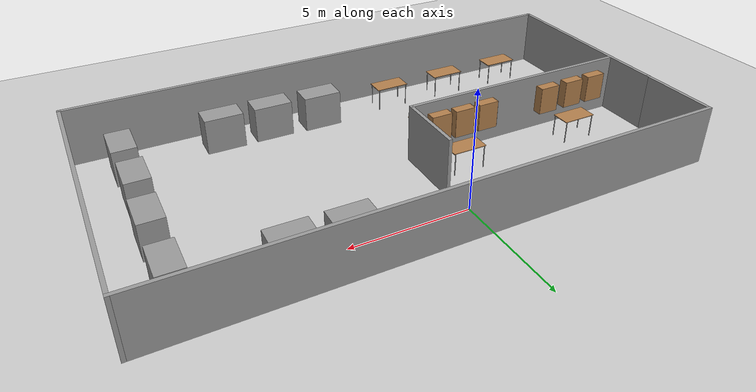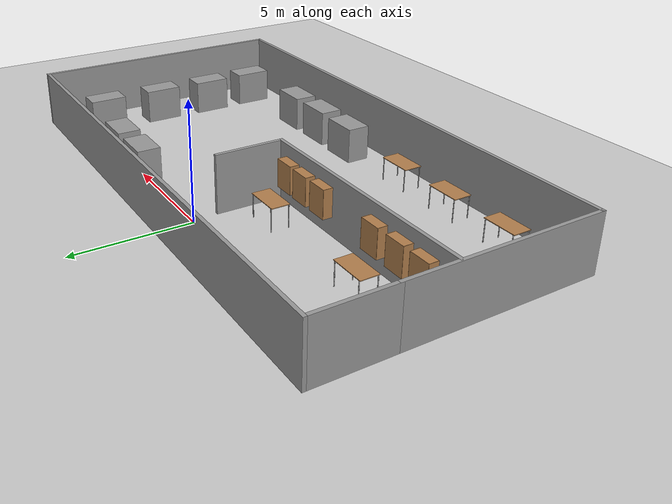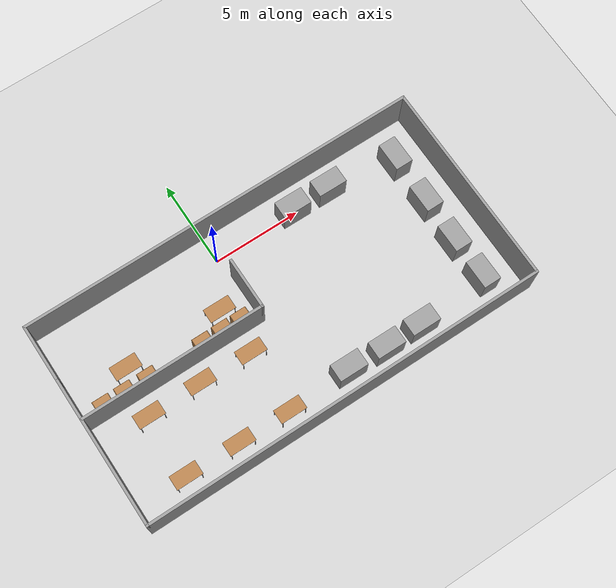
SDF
<sdf version="1.7">
 <world name="default">
  <light name="sun" type="directional">
   <pose>0 0 10 0 -0 0</pose>
   <diffuse>0.8 0.8 0.8 1</diffuse>
   <specular>0.2 0.2 0.2 1</specular>
   <attenuation>
    <range>1000</range>
    <constant>0.9</constant>
    <linear>0.01</linear>
    <quadratic>0.001</quadratic>
   </attenuation>
   <direction>-0.5 0.1 -0.9</direction>
   <spot><inner_angle>0</inner_angle><outer_angle>0</outer_angle><falloff>0</falloff></spot>
  </light>
  <model name="ground_plane">
   <static>1</static>
   <link name="link">
    <collision name="collision">
     <geometry><plane><normal>0 0 1</normal><size>100 100</size></plane></geometry>
     <surface>
      <contact><collide_bitmask>65535</collide_bitmask></contact>
      <friction><ode><mu>100</mu><mu2>50</mu2></ode></friction>
     </surface>
    </collision>
    <visual name="visual">
     <cast_shadows>0</cast_shadows>
     <geometry><plane><normal>0 0 1</normal><size>100 100</size></plane></geometry>
     <material>
      <script><uri>file://media/materials/scripts/gazebo.material</uri><name>Gazebo/Grey</name></script>
     </material>
    </visual>
   </link>
  </model>
  <gravity>0 0 -9.8</gravity>
  <magnetic_field>6e-06 2.3e-05 -4.2e-05</magnetic_field>
  <atmosphere type="adiabatic"/>
  <physics type="ode">
   <max_step_size>0.001</max_step_size>
   <real_time_factor>1</real_time_factor>
   <real_time_update_rate>1000</real_time_update_rate>
  </physics>
  <scene><ambient>0.4 0.4 0.4 1</ambient><background>0.7 0.7 0.7 1</background><shadows>1</shadows></scene>
  <spherical_coordinates>
   <surface_model>EARTH_WGS84</surface_model>
   <latitude_deg>0</latitude_deg>
   <longitude_deg>0</longitude_deg>
   <elevation>0</elevation>
   <heading_deg>0</heading_deg>
  </spherical_coordinates>
  <model name="walls_manufacturing">
   <pose>1.2818 -4.28087 0 0 -0 0</pose>
   <link name="Wall_0">
    <collision name="Wall_0_Collision">
     <geometry><box><size>8.5 0.15 2.5</size></box></geometry>
     <pose>0 0 1.25 0 -0 0</pose>
    </collision>
    <visual name="Wall_0_Visual">
     <pose>0 0 1.25 0 -0 0</pose>
     <geometry><box><size>8.5 0.15 2.5</size></box></geometry>
     <material>
      <script><uri>file://media/materials/scripts/gazebo.material</uri><name>Gazebo/Grey</name></script>
      <ambient>1 1 1 1</ambient>
     </material>
     <meta><layer>0</layer></meta>
    </visual>
    <pose>-11.425 -1.625 0 0 -0 -1.5708</pose>
   </link>
   <link name="Wall_1">
    <collision name="Wall_1_Collision">
     <geometry><box><size>23 0.15 2.5</size></box></geometry>
     <pose>0 0 1.25 0 -0 0</pose>
    </collision>
    <visual name="Wall_1_Visual">
     <pose>0 0 1.25 0 -0 0</pose>
     <geometry><box><size>23 0.15 2.5</size></box></geometry>
     <material>
      <script><uri>file://media/materials/scripts/gazebo.material</uri><name>Gazebo/Grey</name></script>
      <ambient>1 1 1 1</ambient>
     </material>
     <meta><layer>0</layer></meta>
    </visual>
    <pose>-0 -5.8 0 0 -0 0</pose>
   </link>
   <link name="Wall_2">
    <collision name="Wall_2_Collision">
     <geometry><box><size>11.75 0.15 2.5</size></box></geometry>
     <pose>0 0 1.25 0 -0 0</pose>
    </collision>
    <visual name="Wall_2_Visual">
     <pose>0 0 1.25 0 -0 0</pose>
     <geometry><box><size>11.75 0.15 2.5</size></box></geometry>
     <material>
      <script><uri>file://media/materials/scripts/gazebo.material</uri><name>Gazebo/Grey</name></script>
      <ambient>1 1 1 1</ambient>
     </material>
     <meta><layer>0</layer></meta>
    </visual>
    <pose>11.425 0 0 0 -0 1.5708</pose>
   </link>
   <link name="Wall_3">
    <collision name="Wall_3_Collision">
     <geometry><box><size>23 0.15 2.5</size></box></geometry>
     <pose>0 0 1.25 0 -0 0</pose>
    </collision>
    <visual name="Wall_3_Visual">
     <pose>0 0 1.25 0 -0 0</pose>
     <geometry><box><size>23 0.15 2.5</size></box></geometry>
     <material>
      <script><uri>file://media/materials/scripts/gazebo.material</uri><name>Gazebo/Grey</name></script>
      <ambient>1 1 1 1</ambient>
     </material>
     <meta><layer>0</layer></meta>
    </visual>
    <pose>-0 5.8 0 0 -0 3.14159</pose>
   </link>
   <link name="Wall_4">
    <collision name="Wall_4_Collision">
     <geometry><box><size>3.4 0.15 2.5</size></box></geometry>
     <pose>0 0 1.25 0 -0 0</pose>
    </collision>
    <visual name="Wall_4_Visual">
     <pose>0 0 1.25 0 -0 0</pose>
     <geometry><box><size>3.4 0.15 2.5</size></box></geometry>
     <material>
      <script><uri>file://media/materials/scripts/gazebo.material</uri><name>Gazebo/Grey</name></script>
      <ambient>1 1 1 1</ambient>
     </material>
     <meta><layer>0</layer></meta>
    </visual>
    <pose>-11.425 4.175 0 0 -0 -1.5708</pose>
   </link>
   <link name="Wall_6">
    <collision name="Wall_6_Collision">
     <geometry><box><size>10.5 0.15 2.5</size></box></geometry>
     <pose>0 0 1.25 0 -0 0</pose>
    </collision>
    <visual name="Wall_6_Visual">
     <pose>0 0 1.25 0 -0 0</pose>
     <geometry><box><size>10.5 0.15 2.5</size></box></geometry>
     <material>
      <script><uri>file://media/materials/scripts/gazebo.material</uri><name>Gazebo/Grey</name></script>
      <ambient>1 1 1 1</ambient>
     </material>
     <meta><layer>0</layer></meta>
    </visual>
    <pose>-6.20713 0.2621 0 0 -0 0</pose>
   </link>
   <link name="Wall_7">
    <collision name="Wall_7_Collision">
     <geometry><box><size>3 0.15 2.5</size></box></geometry>
     <pose>0 0 1.25 0 -0 0</pose>
    </collision>
    <visual name="Wall_7_Visual">
     <pose>0 0 1.25 0 -0 0</pose>
     <geometry><box><size>3 0.15 2.5</size></box></geometry>
     <material>
      <script><uri>file://media/materials/scripts/gazebo.material</uri><name>Gazebo/Grey</name></script>
      <ambient>1 1 1 1</ambient>
     </material>
     <meta><layer>0</layer></meta>
    </visual>
    <pose>-1.03213 1.6871 0 0 -0 1.5708</pose>
   </link>
   <static>1</static>
  </model>
  <model name="table">
   <static>1</static>
   <link name="link">
    <collision name="surface">
     <pose>0 0 1 0 -0 0</pose>
     <geometry><box><size>1.5 0.8 0.03</size></box></geometry>
     <surface><friction><ode><mu>0.6</mu><mu2>0.6</mu2></ode></friction></surface>
    </collision>
    <visual name="visual1">
     <pose>0 0 1 0 -0 0</pose>
     <geometry><box><size>1.5 0.8 0.03</size></box></geometry>
     <material>
      <script><uri>file://media/materials/scripts/gazebo.material</uri><name>Gazebo/Wood</name></script>
     </material>
    </visual>
    <collision name="front_left_leg">
     <pose>0.68 0.38 0.5 0 -0 0</pose>
     <geometry><cylinder><radius>0.02</radius><length>1</length></cylinder></geometry>
    </collision>
    <visual name="front_left_leg">
     <pose>0.68 0.38 0.5 0 -0 0</pose>
     <geometry><cylinder><radius>0.02</radius><length>1</length></cylinder></geometry>
     <material>
      <script><uri>file://media/materials/scripts/gazebo.material</uri><name>Gazebo/Grey</name></script>
     </material>
    </visual>
    <collision name="front_right_leg">
     <pose>0.68 -0.38 0.5 0 -0 0</pose>
     <geometry><cylinder><radius>0.02</radius><length>1</length></cylinder></geometry>
    </collision>
    <visual name="front_right_leg">
     <pose>0.68 -0.38 0.5 0 -0 0</pose>
     <geometry><cylinder><radius>0.02</radius><length>1</length></cylinder></geometry>
     <material>
      <script><uri>file://media/materials/scripts/gazebo.material</uri><name>Gazebo/Grey</name></script>
     </material>
    </visual>
    <collision name="back_right_leg">
     <pose>-0.68 -0.38 0.5 0 -0 0</pose>
     <geometry><cylinder><radius>0.02</radius><length>1</length></cylinder></geometry>
    </collision>
    <visual name="back_right_leg">
     <pose>-0.68 -0.38 0.5 0 -0 0</pose>
     <geometry><cylinder><radius>0.02</radius><length>1</length></cylinder></geometry>
     <material>
      <script><uri>file://media/materials/scripts/gazebo.material</uri><name>Gazebo/Grey</name></script>
     </material>
    </visual>
    <collision name="back_left_leg">
     <pose>-0.68 0.38 0.5 0 -0 0</pose>
     <geometry><cylinder><radius>0.02</radius><length>1</length></cylinder></geometry>
    </collision>
    <visual name="back_left_leg">
     <pose>-0.68 0.38 0.5 0 -0 0</pose>
     <geometry><cylinder><radius>0.02</radius><length>1</length></cylinder></geometry>
     <material>
      <script><uri>file://media/materials/scripts/gazebo.material</uri><name>Gazebo/Grey</name></script>
     </material>
    </visual>
   </link>
   <pose>-7.27945 -5.25836 0 0 -0 0</pose>
  </model>
  <model name="table_0">
   <static>1</static>
   <link name="link">
    <collision name="surface">
     <pose>0 0 1 0 -0 0</pose>
     <geometry><box><size>1.5 0.8 0.03</size></box></geometry>
     <surface><friction><ode><mu>0.6</mu><mu2>0.6</mu2></ode></friction></surface>
    </collision>
    <visual name="visual1">
     <pose>0 0 1 0 -0 0</pose>
     <geometry><box><size>1.5 0.8 0.03</size></box></geometry>
     <material>
      <script><uri>file://media/materials/scripts/gazebo.material</uri><name>Gazebo/Wood</name></script>
     </material>
    </visual>
    <collision name="front_left_leg">
     <pose>0.68 0.38 0.5 0 -0 0</pose>
     <geometry><cylinder><radius>0.02</radius><length>1</length></cylinder></geometry>
    </collision>
    <visual name="front_left_leg">
     <pose>0.68 0.38 0.5 0 -0 0</pose>
     <geometry><cylinder><radius>0.02</radius><length>1</length></cylinder></geometry>
     <material>
      <script><uri>file://media/materials/scripts/gazebo.material</uri><name>Gazebo/Grey</name></script>
     </material>
    </visual>
    <collision name="front_right_leg">
     <pose>0.68 -0.38 0.5 0 -0 0</pose>
     <geometry><cylinder><radius>0.02</radius><length>1</length></cylinder></geometry>
    </collision>
    <visual name="front_right_leg">
     <pose>0.68 -0.38 0.5 0 -0 0</pose>
     <geometry><cylinder><radius>0.02</radius><length>1</length></cylinder></geometry>
     <material>
      <script><uri>file://media/materials/scripts/gazebo.material</uri><name>Gazebo/Grey</name></script>
     </material>
    </visual>
    <collision name="back_right_leg">
     <pose>-0.68 -0.38 0.5 0 -0 0</pose>
     <geometry><cylinder><radius>0.02</radius><length>1</length></cylinder></geometry>
    </collision>
    <visual name="back_right_leg">
     <pose>-0.68 -0.38 0.5 0 -0 0</pose>
     <geometry><cylinder><radius>0.02</radius><length>1</length></cylinder></geometry>
     <material>
      <script><uri>file://media/materials/scripts/gazebo.material</uri><name>Gazebo/Grey</name></script>
     </material>
    </visual>
    <collision name="back_left_leg">
     <pose>-0.68 0.38 0.5 0 -0 0</pose>
     <geometry><cylinder><radius>0.02</radius><length>1</length></cylinder></geometry>
    </collision>
    <visual name="back_left_leg">
     <pose>-0.68 0.38 0.5 0 -0 0</pose>
     <geometry><cylinder><radius>0.02</radius><length>1</length></cylinder></geometry>
     <material>
      <script><uri>file://media/materials/scripts/gazebo.material</uri><name>Gazebo/Grey</name></script>
     </material>
    </visual>
   </link>
   <pose>-4.26634 -5.23085 0 0 -0 0</pose>
  </model>
  <model name="table_1">
   <static>1</static>
   <link name="link">
    <collision name="surface">
     <pose>0 0 1 0 -0 0</pose>
     <geometry><box><size>1.5 0.8 0.03</size></box></geometry>
     <surface><friction><ode><mu>0.6</mu><mu2>0.6</mu2></ode></friction></surface>
    </collision>
    <visual name="visual1">
     <pose>0 0 1 0 -0 0</pose>
     <geometry><box><size>1.5 0.8 0.03</size></box></geometry>
     <material>
      <script><uri>file://media/materials/scripts/gazebo.material</uri><name>Gazebo/Wood</name></script>
     </material>
    </visual>
    <collision name="front_left_leg">
     <pose>0.68 0.38 0.5 0 -0 0</pose>
     <geometry><cylinder><radius>0.02</radius><length>1</length></cylinder></geometry>
    </collision>
    <visual name="front_left_leg">
     <pose>0.68 0.38 0.5 0 -0 0</pose>
     <geometry><cylinder><radius>0.02</radius><length>1</length></cylinder></geometry>
     <material>
      <script><uri>file://media/materials/scripts/gazebo.material</uri><name>Gazebo/Grey</name></script>
     </material>
    </visual>
    <collision name="front_right_leg">
     <pose>0.68 -0.38 0.5 0 -0 0</pose>
     <geometry><cylinder><radius>0.02</radius><length>1</length></cylinder></geometry>
    </collision>
    <visual name="front_right_leg">
     <pose>0.68 -0.38 0.5 0 -0 0</pose>
     <geometry><cylinder><radius>0.02</radius><length>1</length></cylinder></geometry>
     <material>
      <script><uri>file://media/materials/scripts/gazebo.material</uri><name>Gazebo/Grey</name></script>
     </material>
    </visual>
    <collision name="back_right_leg">
     <pose>-0.68 -0.38 0.5 0 -0 0</pose>
     <geometry><cylinder><radius>0.02</radius><length>1</length></cylinder></geometry>
    </collision>
    <visual name="back_right_leg">
     <pose>-0.68 -0.38 0.5 0 -0 0</pose>
     <geometry><cylinder><radius>0.02</radius><length>1</length></cylinder></geometry>
     <material>
      <script><uri>file://media/materials/scripts/gazebo.material</uri><name>Gazebo/Grey</name></script>
     </material>
    </visual>
    <collision name="back_left_leg">
     <pose>-0.68 0.38 0.5 0 -0 0</pose>
     <geometry><cylinder><radius>0.02</radius><length>1</length></cylinder></geometry>
    </collision>
    <visual name="back_left_leg">
     <pose>-0.68 0.38 0.5 0 -0 0</pose>
     <geometry><cylinder><radius>0.02</radius><length>1</length></cylinder></geometry>
     <material>
      <script><uri>file://media/materials/scripts/gazebo.material</uri><name>Gazebo/Grey</name></script>
     </material>
    </visual>
   </link>
   <pose>-1.29612 -5.28622 0 0 -0 0</pose>
  </model>
  <model name="unit_box_clone">
   <pose>10.7908 -5.97906 0.771657 0 -6e-06 -0.00013</pose>
   <link name="link">
    <inertial>
     <mass>1</mass>
     <inertia>
      <ixx>0.166667</ixx>
      <ixy>0</ixy>
      <ixz>0</ixz>
      <iyy>0.166667</iyy>
      <iyz>0</iyz>
      <izz>0.166667</izz>
     </inertia>
    </inertial>
    <collision name="collision"><geometry><box><size>1 1.64432 1.54332</size></box></geometry></collision>
    <visual name="visual">
     <geometry><box><size>1 1.64432 1.54332</size></box></geometry>
     <material>
      <script><name>Gazebo/Grey</name><uri>file://media/materials/scripts/gazebo.material</uri></script>
     </material>
    </visual>
   </link>
  </model>
  <model name="unit_box_clone_0">
   <pose>10.8391 -8.36904 0.77166 -0 -0 -8.5e-05</pose>
   <link name="link">
    <inertial>
     <mass>1</mass>
     <inertia>
      <ixx>0.166667</ixx>
      <ixy>0</ixy>
      <ixz>0</ixz>
      <iyy>0.166667</iyy>
      <iyz>0</iyz>
      <izz>0.166667</izz>
     </inertia>
    </inertial>
    <collision name="collision"><geometry><box><size>1 1.64432 1.54332</size></box></geometry></collision>
    <visual name="visual">
     <geometry><box><size>1 1.64432 1.54332</size></box></geometry>
     <material>
      <script><name>Gazebo/Grey</name><uri>file://media/materials/scripts/gazebo.material</uri></script>
     </material>
    </visual>
   </link>
  </model>
  <model name="unit_box_clone_1">
   <pose>10.8615 -0.568479 0.77166 -0 -0 -6.1e-05</pose>
   <link name="link">
    <inertial>
     <mass>1</mass>
     <inertia>
      <ixx>0.166667</ixx>
      <ixy>0</ixy>
      <ixz>0</ixz>
      <iyy>0.166667</iyy>
      <iyz>0</iyz>
      <izz>0.166667</izz>
     </inertia>
    </inertial>
    <collision name="collision"><geometry><box><size>1 1.64432 1.54332</size></box></geometry></collision>
    <visual name="visual">
     <geometry><box><size>1 1.64432 1.54332</size></box></geometry>
     <material>
      <script><name>Gazebo/Grey</name><uri>file://media/materials/scripts/gazebo.material</uri></script>
     </material>
    </visual>
   </link>
  </model>
  <model name="table_clone">
   <static>1</static>
   <link name="link">
    <collision name="surface">
     <pose>0 0 1 0 -0 0</pose>
     <geometry><box><size>1.5 0.8 0.03</size></box></geometry>
     <surface><friction><ode><mu>0.6</mu><mu2>0.6</mu2></ode></friction></surface>
    </collision>
    <visual name="visual1">
     <pose>0 0 1 0 -0 0</pose>
     <geometry><box><size>1.5 0.8 0.03</size></box></geometry>
     <material>
      <script><uri>file://media/materials/scripts/gazebo.material</uri><name>Gazebo/Wood</name></script>
     </material>
    </visual>
    <collision name="front_left_leg">
     <pose>0.68 0.38 0.5 0 -0 0</pose>
     <geometry><cylinder><radius>0.02</radius><length>1</length></cylinder></geometry>
    </collision>
    <visual name="front_left_leg">
     <pose>0.68 0.38 0.5 0 -0 0</pose>
     <geometry><cylinder><radius>0.02</radius><length>1</length></cylinder></geometry>
     <material>
      <script><uri>file://media/materials/scripts/gazebo.material</uri><name>Gazebo/Grey</name></script>
     </material>
    </visual>
    <collision name="front_right_leg">
     <pose>0.68 -0.38 0.5 0 -0 0</pose>
     <geometry><cylinder><radius>0.02</radius><length>1</length></cylinder></geometry>
    </collision>
    <visual name="front_right_leg">
     <pose>0.68 -0.38 0.5 0 -0 0</pose>
     <geometry><cylinder><radius>0.02</radius><length>1</length></cylinder></geometry>
     <material>
      <script><uri>file://media/materials/scripts/gazebo.material</uri><name>Gazebo/Grey</name></script>
     </material>
    </visual>
    <collision name="back_right_leg">
     <pose>-0.68 -0.38 0.5 0 -0 0</pose>
     <geometry><cylinder><radius>0.02</radius><length>1</length></cylinder></geometry>
    </collision>
    <visual name="back_right_leg">
     <pose>-0.68 -0.38 0.5 0 -0 0</pose>
     <geometry><cylinder><radius>0.02</radius><length>1</length></cylinder></geometry>
     <material>
      <script><uri>file://media/materials/scripts/gazebo.material</uri><name>Gazebo/Grey</name></script>
     </material>
    </visual>
    <collision name="back_left_leg">
     <pose>-0.68 0.38 0.5 0 -0 0</pose>
     <geometry><cylinder><radius>0.02</radius><length>1</length></cylinder></geometry>
    </collision>
    <visual name="back_left_leg">
     <pose>-0.68 0.38 0.5 0 -0 0</pose>
     <geometry><cylinder><radius>0.02</radius><length>1</length></cylinder></geometry>
     <material>
      <script><uri>file://media/materials/scripts/gazebo.material</uri><name>Gazebo/Grey</name></script>
     </material>
    </visual>
   </link>
   <pose>-7.33676 -8.81284 0 0 -0 0</pose>
  </model>
  <model name="table_clone_0">
   <static>1</static>
   <link name="link">
    <collision name="surface">
     <pose>0 0 1 0 -0 0</pose>
     <geometry><box><size>1.5 0.8 0.03</size></box></geometry>
     <surface><friction><ode><mu>0.6</mu><mu2>0.6</mu2></ode></friction></surface>
    </collision>
    <visual name="visual1">
     <pose>0 0 1 0 -0 0</pose>
     <geometry><box><size>1.5 0.8 0.03</size></box></geometry>
     <material>
      <script><uri>file://media/materials/scripts/gazebo.material</uri><name>Gazebo/Wood</name></script>
     </material>
    </visual>
    <collision name="front_left_leg">
     <pose>0.68 0.38 0.5 0 -0 0</pose>
     <geometry><cylinder><radius>0.02</radius><length>1</length></cylinder></geometry>
    </collision>
    <visual name="front_left_leg">
     <pose>0.68 0.38 0.5 0 -0 0</pose>
     <geometry><cylinder><radius>0.02</radius><length>1</length></cylinder></geometry>
     <material>
      <script><uri>file://media/materials/scripts/gazebo.material</uri><name>Gazebo/Grey</name></script>
     </material>
    </visual>
    <collision name="front_right_leg">
     <pose>0.68 -0.38 0.5 0 -0 0</pose>
     <geometry><cylinder><radius>0.02</radius><length>1</length></cylinder></geometry>
    </collision>
    <visual name="front_right_leg">
     <pose>0.68 -0.38 0.5 0 -0 0</pose>
     <geometry><cylinder><radius>0.02</radius><length>1</length></cylinder></geometry>
     <material>
      <script><uri>file://media/materials/scripts/gazebo.material</uri><name>Gazebo/Grey</name></script>
     </material>
    </visual>
    <collision name="back_right_leg">
     <pose>-0.68 -0.38 0.5 0 -0 0</pose>
     <geometry><cylinder><radius>0.02</radius><length>1</length></cylinder></geometry>
    </collision>
    <visual name="back_right_leg">
     <pose>-0.68 -0.38 0.5 0 -0 0</pose>
     <geometry><cylinder><radius>0.02</radius><length>1</length></cylinder></geometry>
     <material>
      <script><uri>file://media/materials/scripts/gazebo.material</uri><name>Gazebo/Grey</name></script>
     </material>
    </visual>
    <collision name="back_left_leg">
     <pose>-0.68 0.38 0.5 0 -0 0</pose>
     <geometry><cylinder><radius>0.02</radius><length>1</length></cylinder></geometry>
    </collision>
    <visual name="back_left_leg">
     <pose>-0.68 0.38 0.5 0 -0 0</pose>
     <geometry><cylinder><radius>0.02</radius><length>1</length></cylinder></geometry>
     <material>
      <script><uri>file://media/materials/scripts/gazebo.material</uri><name>Gazebo/Grey</name></script>
     </material>
    </visual>
   </link>
   <pose>-4.27772 -8.84752 0 0 -0 0</pose>
  </model>
  <model name="table_clone_1">
   <static>1</static>
   <link name="link">
    <collision name="surface">
     <pose>0 0 1 0 -0 0</pose>
     <geometry><box><size>1.5 0.8 0.03</size></box></geometry>
     <surface><friction><ode><mu>0.6</mu><mu2>0.6</mu2></ode></friction></surface>
    </collision>
    <visual name="visual1">
     <pose>0 0 1 0 -0 0</pose>
     <geometry><box><size>1.5 0.8 0.03</size></box></geometry>
     <material>
      <script><uri>file://media/materials/scripts/gazebo.material</uri><name>Gazebo/Wood</name></script>
     </material>
    </visual>
    <collision name="front_left_leg">
     <pose>0.68 0.38 0.5 0 -0 0</pose>
     <geometry><cylinder><radius>0.02</radius><length>1</length></cylinder></geometry>
    </collision>
    <visual name="front_left_leg">
     <pose>0.68 0.38 0.5 0 -0 0</pose>
     <geometry><cylinder><radius>0.02</radius><length>1</length></cylinder></geometry>
     <material>
      <script><uri>file://media/materials/scripts/gazebo.material</uri><name>Gazebo/Grey</name></script>
     </material>
    </visual>
    <collision name="front_right_leg">
     <pose>0.68 -0.38 0.5 0 -0 0</pose>
     <geometry><cylinder><radius>0.02</radius><length>1</length></cylinder></geometry>
    </collision>
    <visual name="front_right_leg">
     <pose>0.68 -0.38 0.5 0 -0 0</pose>
     <geometry><cylinder><radius>0.02</radius><length>1</length></cylinder></geometry>
     <material>
      <script><uri>file://media/materials/scripts/gazebo.material</uri><name>Gazebo/Grey</name></script>
     </material>
    </visual>
    <collision name="back_right_leg">
     <pose>-0.68 -0.38 0.5 0 -0 0</pose>
     <geometry><cylinder><radius>0.02</radius><length>1</length></cylinder></geometry>
    </collision>
    <visual name="back_right_leg">
     <pose>-0.68 -0.38 0.5 0 -0 0</pose>
     <geometry><cylinder><radius>0.02</radius><length>1</length></cylinder></geometry>
     <material>
      <script><uri>file://media/materials/scripts/gazebo.material</uri><name>Gazebo/Grey</name></script>
     </material>
    </visual>
    <collision name="back_left_leg">
     <pose>-0.68 0.38 0.5 0 -0 0</pose>
     <geometry><cylinder><radius>0.02</radius><length>1</length></cylinder></geometry>
    </collision>
    <visual name="back_left_leg">
     <pose>-0.68 0.38 0.5 0 -0 0</pose>
     <geometry><cylinder><radius>0.02</radius><length>1</length></cylinder></geometry>
     <material>
      <script><uri>file://media/materials/scripts/gazebo.material</uri><name>Gazebo/Grey</name></script>
     </material>
    </visual>
   </link>
   <pose>-1.30052 -8.87613 0 0 -0 0</pose>
  </model>
  <model name="bookshelf">
   <static>1</static>
   <link name="link">
    <inertial><mass>1</mass></inertial>
    <collision name="back">
     <pose>0 0.005 0.6 0 -0 0</pose>
     <geometry><box><size>0.9 0.01 1.2</size></box></geometry>
    </collision>
    <visual name="visual1">
     <pose>0 0.005 0.6 0 -0 0</pose>
     <geometry><box><size>0.9 0.01 1.2</size></box></geometry>
     <material>
      <script><uri>file://media/materials/scripts/gazebo.material</uri><name>Gazebo/Wood</name></script>
     </material>
    </visual>
    <collision name="left_side">
     <pose>0.45 -0.195 0.6 0 -0 0</pose>
     <geometry><box><size>0.02 0.4 1.2</size></box></geometry>
    </collision>
    <visual name="visual2">
     <pose>0.45 -0.195 0.6 0 -0 0</pose>
     <geometry><box><size>0.02 0.4 1.2</size></box></geometry>
     <material>
      <script><uri>file://media/materials/scripts/gazebo.material</uri><name>Gazebo/Wood</name></script>
     </material>
    </visual>
    <collision name="right_side">
     <pose>-0.45 -0.195 0.6 0 -0 0</pose>
     <geometry><box><size>0.02 0.4 1.2</size></box></geometry>
    </collision>
    <visual name="visual3">
     <pose>-0.45 -0.195 0.6 0 -0 0</pose>
     <geometry><box><size>0.02 0.4 1.2</size></box></geometry>
     <material>
      <script><uri>file://media/materials/scripts/gazebo.material</uri><name>Gazebo/Wood</name></script>
     </material>
    </visual>
    <collision name="bottom">
     <pose>0 -0.195 0.03 0 -0 0</pose>
     <geometry><box><size>0.88 0.4 0.06</size></box></geometry>
    </collision>
    <visual name="visual4">
     <pose>0 -0.195 0.03 0 -0 0</pose>
     <geometry><box><size>0.88 0.4 0.06</size></box></geometry>
     <material>
      <script><uri>file://media/materials/scripts/gazebo.material</uri><name>Gazebo/Wood</name></script>
     </material>
    </visual>
    <collision name="top">
     <pose>0 -0.195 1.19 0 -0 0</pose>
     <geometry><box><size>0.88 0.4 0.02</size></box></geometry>
    </collision>
    <visual name="visual5">
     <pose>0 -0.195 1.19 0 -0 0</pose>
     <geometry><box><size>0.88 0.4 0.02</size></box></geometry>
     <material>
      <script><uri>file://media/materials/scripts/gazebo.material</uri><name>Gazebo/Wood</name></script>
     </material>
    </visual>
    <collision name="low_shelf">
     <pose>0 -0.195 0.43 0 -0 0</pose>
     <geometry><box><size>0.88 0.4 0.02</size></box></geometry>
    </collision>
    <visual name="visual6">
     <pose>0 -0.195 0.43 0 -0 0</pose>
     <geometry><box><size>0.88 0.4 0.02</size></box></geometry>
     <material>
      <script><uri>file://media/materials/scripts/gazebo.material</uri><name>Gazebo/Wood</name></script>
     </material>
    </visual>
    <collision name="high_shelf">
     <pose>0 -0.195 0.8 0 -0 0</pose>
     <geometry><box><size>0.88 0.4 0.02</size></box></geometry>
    </collision>
    <visual name="visual7">
     <pose>0 -0.195 0.8 0 -0 0</pose>
     <geometry><box><size>0.88 0.4 0.02</size></box></geometry>
     <material>
      <script><uri>file://media/materials/scripts/gazebo.material</uri><name>Gazebo/Wood</name></script>
     </material>
    </visual>
   </link>
   <pose>-0.875461 -3.46341 0.861865 0 -0 0</pose>
  </model>
  <model name="bookshelf_clone">
   <static>1</static>
   <link name="link">
    <inertial><mass>1</mass></inertial>
    <collision name="back">
     <pose>0 0.005 0.6 0 -0 0</pose>
     <geometry><box><size>0.9 0.01 1.2</size></box></geometry>
    </collision>
    <visual name="visual1">
     <pose>0 0.005 0.6 0 -0 0</pose>
     <geometry><box><size>0.9 0.01 1.2</size></box></geometry>
     <material>
      <script><uri>file://media/materials/scripts/gazebo.material</uri><name>Gazebo/Wood</name></script>
     </material>
    </visual>
    <collision name="left_side">
     <pose>0.45 -0.195 0.6 0 -0 0</pose>
     <geometry><box><size>0.02 0.4 1.2</size></box></geometry>
    </collision>
    <visual name="visual2">
     <pose>0.45 -0.195 0.6 0 -0 0</pose>
     <geometry><box><size>0.02 0.4 1.2</size></box></geometry>
     <material>
      <script><uri>file://media/materials/scripts/gazebo.material</uri><name>Gazebo/Wood</name></script>
     </material>
    </visual>
    <collision name="right_side">
     <pose>-0.45 -0.195 0.6 0 -0 0</pose>
     <geometry><box><size>0.02 0.4 1.2</size></box></geometry>
    </collision>
    <visual name="visual3">
     <pose>-0.45 -0.195 0.6 0 -0 0</pose>
     <geometry><box><size>0.02 0.4 1.2</size></box></geometry>
     <material>
      <script><uri>file://media/materials/scripts/gazebo.material</uri><name>Gazebo/Wood</name></script>
     </material>
    </visual>
    <collision name="bottom">
     <pose>0 -0.195 0.03 0 -0 0</pose>
     <geometry><box><size>0.88 0.4 0.06</size></box></geometry>
    </collision>
    <visual name="visual4">
     <pose>0 -0.195 0.03 0 -0 0</pose>
     <geometry><box><size>0.88 0.4 0.06</size></box></geometry>
     <material>
      <script><uri>file://media/materials/scripts/gazebo.material</uri><name>Gazebo/Wood</name></script>
     </material>
    </visual>
    <collision name="top">
     <pose>0 -0.195 1.19 0 -0 0</pose>
     <geometry><box><size>0.88 0.4 0.02</size></box></geometry>
    </collision>
    <visual name="visual5">
     <pose>0 -0.195 1.19 0 -0 0</pose>
     <geometry><box><size>0.88 0.4 0.02</size></box></geometry>
     <material>
      <script><uri>file://media/materials/scripts/gazebo.material</uri><name>Gazebo/Wood</name></script>
     </material>
    </visual>
    <collision name="low_shelf">
     <pose>0 -0.195 0.43 0 -0 0</pose>
     <geometry><box><size>0.88 0.4 0.02</size></box></geometry>
    </collision>
    <visual name="visual6">
     <pose>0 -0.195 0.43 0 -0 0</pose>
     <geometry><box><size>0.88 0.4 0.02</size></box></geometry>
     <material>
      <script><uri>file://media/materials/scripts/gazebo.material</uri><name>Gazebo/Wood</name></script>
     </material>
    </visual>
    <collision name="high_shelf">
     <pose>0 -0.195 0.8 0 -0 0</pose>
     <geometry><box><size>0.88 0.4 0.02</size></box></geometry>
    </collision>
    <visual name="visual7">
     <pose>0 -0.195 0.8 0 -0 0</pose>
     <geometry><box><size>0.88 0.4 0.02</size></box></geometry>
     <material>
      <script><uri>file://media/materials/scripts/gazebo.material</uri><name>Gazebo/Wood</name></script>
     </material>
    </visual>
   </link>
   <pose>-1.97917 -3.45418 0.859303 0 -0 0</pose>
  </model>
  <model name="bookshelf_clone_0">
   <static>1</static>
   <link name="link">
    <inertial><mass>1</mass></inertial>
    <collision name="back">
     <pose>0 0.005 0.6 0 -0 0</pose>
     <geometry><box><size>0.9 0.01 1.2</size></box></geometry>
    </collision>
    <visual name="visual1">
     <pose>0 0.005 0.6 0 -0 0</pose>
     <geometry><box><size>0.9 0.01 1.2</size></box></geometry>
     <material>
      <script><uri>file://media/materials/scripts/gazebo.material</uri><name>Gazebo/Wood</name></script>
     </material>
    </visual>
    <collision name="left_side">
     <pose>0.45 -0.195 0.6 0 -0 0</pose>
     <geometry><box><size>0.02 0.4 1.2</size></box></geometry>
    </collision>
    <visual name="visual2">
     <pose>0.45 -0.195 0.6 0 -0 0</pose>
     <geometry><box><size>0.02 0.4 1.2</size></box></geometry>
     <material>
      <script><uri>file://media/materials/scripts/gazebo.material</uri><name>Gazebo/Wood</name></script>
     </material>
    </visual>
    <collision name="right_side">
     <pose>-0.45 -0.195 0.6 0 -0 0</pose>
     <geometry><box><size>0.02 0.4 1.2</size></box></geometry>
    </collision>
    <visual name="visual3">
     <pose>-0.45 -0.195 0.6 0 -0 0</pose>
     <geometry><box><size>0.02 0.4 1.2</size></box></geometry>
     <material>
      <script><uri>file://media/materials/scripts/gazebo.material</uri><name>Gazebo/Wood</name></script>
     </material>
    </visual>
    <collision name="bottom">
     <pose>0 -0.195 0.03 0 -0 0</pose>
     <geometry><box><size>0.88 0.4 0.06</size></box></geometry>
    </collision>
    <visual name="visual4">
     <pose>0 -0.195 0.03 0 -0 0</pose>
     <geometry><box><size>0.88 0.4 0.06</size></box></geometry>
     <material>
      <script><uri>file://media/materials/scripts/gazebo.material</uri><name>Gazebo/Wood</name></script>
     </material>
    </visual>
    <collision name="top">
     <pose>0 -0.195 1.19 0 -0 0</pose>
     <geometry><box><size>0.88 0.4 0.02</size></box></geometry>
    </collision>
    <visual name="visual5">
     <pose>0 -0.195 1.19 0 -0 0</pose>
     <geometry><box><size>0.88 0.4 0.02</size></box></geometry>
     <material>
      <script><uri>file://media/materials/scripts/gazebo.material</uri><name>Gazebo/Wood</name></script>
     </material>
    </visual>
    <collision name="low_shelf">
     <pose>0 -0.195 0.43 0 -0 0</pose>
     <geometry><box><size>0.88 0.4 0.02</size></box></geometry>
    </collision>
    <visual name="visual6">
     <pose>0 -0.195 0.43 0 -0 0</pose>
     <geometry><box><size>0.88 0.4 0.02</size></box></geometry>
     <material>
      <script><uri>file://media/materials/scripts/gazebo.material</uri><name>Gazebo/Wood</name></script>
     </material>
    </visual>
    <collision name="high_shelf">
     <pose>0 -0.195 0.8 0 -0 0</pose>
     <geometry><box><size>0.88 0.4 0.02</size></box></geometry>
    </collision>
    <visual name="visual7">
     <pose>0 -0.195 0.8 0 -0 0</pose>
     <geometry><box><size>0.88 0.4 0.02</size></box></geometry>
     <material>
      <script><uri>file://media/materials/scripts/gazebo.material</uri><name>Gazebo/Wood</name></script>
     </material>
    </visual>
   </link>
   <pose>-3.12888 -3.47268 0.859303 0 -0 0</pose>
  </model>
  <model name="table_0_clone">
   <static>1</static>
   <link name="link">
    <collision name="surface">
     <pose>0 0 1 0 -0 0</pose>
     <geometry><box><size>1.5 0.8 0.03</size></box></geometry>
     <surface><friction><ode><mu>0.6</mu><mu2>0.6</mu2></ode></friction></surface>
    </collision>
    <visual name="visual1">
     <pose>0 0 1 0 -0 0</pose>
     <geometry><box><size>1.5 0.8 0.03</size></box></geometry>
     <material>
      <script><uri>file://media/materials/scripts/gazebo.material</uri><name>Gazebo/Wood</name></script>
     </material>
    </visual>
    <collision name="front_left_leg">
     <pose>0.68 0.38 0.5 0 -0 0</pose>
     <geometry><cylinder><radius>0.02</radius><length>1</length></cylinder></geometry>
    </collision>
    <visual name="front_left_leg">
     <pose>0.68 0.38 0.5 0 -0 0</pose>
     <geometry><cylinder><radius>0.02</radius><length>1</length></cylinder></geometry>
     <material>
      <script><uri>file://media/materials/scripts/gazebo.material</uri><name>Gazebo/Grey</name></script>
     </material>
    </visual>
    <collision name="front_right_leg">
     <pose>0.68 -0.38 0.5 0 -0 0</pose>
     <geometry><cylinder><radius>0.02</radius><length>1</length></cylinder></geometry>
    </collision>
    <visual name="front_right_leg">
     <pose>0.68 -0.38 0.5 0 -0 0</pose>
     <geometry><cylinder><radius>0.02</radius><length>1</length></cylinder></geometry>
     <material>
      <script><uri>file://media/materials/scripts/gazebo.material</uri><name>Gazebo/Grey</name></script>
     </material>
    </visual>
    <collision name="back_right_leg">
     <pose>-0.68 -0.38 0.5 0 -0 0</pose>
     <geometry><cylinder><radius>0.02</radius><length>1</length></cylinder></geometry>
    </collision>
    <visual name="back_right_leg">
     <pose>-0.68 -0.38 0.5 0 -0 0</pose>
     <geometry><cylinder><radius>0.02</radius><length>1</length></cylinder></geometry>
     <material>
      <script><uri>file://media/materials/scripts/gazebo.material</uri><name>Gazebo/Grey</name></script>
     </material>
    </visual>
    <collision name="back_left_leg">
     <pose>-0.68 0.38 0.5 0 -0 0</pose>
     <geometry><cylinder><radius>0.02</radius><length>1</length></cylinder></geometry>
    </collision>
    <visual name="back_left_leg">
     <pose>-0.68 0.38 0.5 0 -0 0</pose>
     <geometry><cylinder><radius>0.02</radius><length>1</length></cylinder></geometry>
     <material>
      <script><uri>file://media/materials/scripts/gazebo.material</uri><name>Gazebo/Grey</name></script>
     </material>
    </visual>
   </link>
   <pose>-1.42105 -2.5593 0 0 -0 0</pose>
  </model>
  <model name="table_0_clone_0">
   <static>1</static>
   <link name="link">
    <collision name="surface">
     <pose>0 0 1 0 -0 0</pose>
     <geometry><box><size>1.5 0.8 0.03</size></box></geometry>
     <surface><friction><ode><mu>0.6</mu><mu2>0.6</mu2></ode></friction></surface>
    </collision>
    <visual name="visual1">
     <pose>0 0 1 0 -0 0</pose>
     <geometry><box><size>1.5 0.8 0.03</size></box></geometry>
     <material>
      <script><uri>file://media/materials/scripts/gazebo.material</uri><name>Gazebo/Wood</name></script>
     </material>
    </visual>
    <collision name="front_left_leg">
     <pose>0.68 0.38 0.5 0 -0 0</pose>
     <geometry><cylinder><radius>0.02</radius><length>1</length></cylinder></geometry>
    </collision>
    <visual name="front_left_leg">
     <pose>0.68 0.38 0.5 0 -0 0</pose>
     <geometry><cylinder><radius>0.02</radius><length>1</length></cylinder></geometry>
     <material>
      <script><uri>file://media/materials/scripts/gazebo.material</uri><name>Gazebo/Grey</name></script>
     </material>
    </visual>
    <collision name="front_right_leg">
     <pose>0.68 -0.38 0.5 0 -0 0</pose>
     <geometry><cylinder><radius>0.02</radius><length>1</length></cylinder></geometry>
    </collision>
    <visual name="front_right_leg">
     <pose>0.68 -0.38 0.5 0 -0 0</pose>
     <geometry><cylinder><radius>0.02</radius><length>1</length></cylinder></geometry>
     <material>
      <script><uri>file://media/materials/scripts/gazebo.material</uri><name>Gazebo/Grey</name></script>
     </material>
    </visual>
    <collision name="back_right_leg">
     <pose>-0.68 -0.38 0.5 0 -0 0</pose>
     <geometry><cylinder><radius>0.02</radius><length>1</length></cylinder></geometry>
    </collision>
    <visual name="back_right_leg">
     <pose>-0.68 -0.38 0.5 0 -0 0</pose>
     <geometry><cylinder><radius>0.02</radius><length>1</length></cylinder></geometry>
     <material>
      <script><uri>file://media/materials/scripts/gazebo.material</uri><name>Gazebo/Grey</name></script>
     </material>
    </visual>
    <collision name="back_left_leg">
     <pose>-0.68 0.38 0.5 0 -0 0</pose>
     <geometry><cylinder><radius>0.02</radius><length>1</length></cylinder></geometry>
    </collision>
    <visual name="back_left_leg">
     <pose>-0.68 0.38 0.5 0 -0 0</pose>
     <geometry><cylinder><radius>0.02</radius><length>1</length></cylinder></geometry>
     <material>
      <script><uri>file://media/materials/scripts/gazebo.material</uri><name>Gazebo/Grey</name></script>
     </material>
    </visual>
   </link>
   <pose>-6.97305 -2.5268 0 0 -0 0</pose>
  </model>
  <model name="bookshelf_clone_clone">
   <static>1</static>
   <link name="link">
    <inertial><mass>1</mass></inertial>
    <collision name="back">
     <pose>0 0.005 0.6 0 -0 0</pose>
     <geometry><box><size>0.9 0.01 1.2</size></box></geometry>
    </collision>
    <visual name="visual1">
     <pose>0 0.005 0.6 0 -0 0</pose>
     <geometry><box><size>0.9 0.01 1.2</size></box></geometry>
     <material>
      <script><uri>file://media/materials/scripts/gazebo.material</uri><name>Gazebo/Wood</name></script>
     </material>
    </visual>
    <collision name="left_side">
     <pose>0.45 -0.195 0.6 0 -0 0</pose>
     <geometry><box><size>0.02 0.4 1.2</size></box></geometry>
    </collision>
    <visual name="visual2">
     <pose>0.45 -0.195 0.6 0 -0 0</pose>
     <geometry><box><size>0.02 0.4 1.2</size></box></geometry>
     <material>
      <script><uri>file://media/materials/scripts/gazebo.material</uri><name>Gazebo/Wood</name></script>
     </material>
    </visual>
    <collision name="right_side">
     <pose>-0.45 -0.195 0.6 0 -0 0</pose>
     <geometry><box><size>0.02 0.4 1.2</size></box></geometry>
    </collision>
    <visual name="visual3">
     <pose>-0.45 -0.195 0.6 0 -0 0</pose>
     <geometry><box><size>0.02 0.4 1.2</size></box></geometry>
     <material>
      <script><uri>file://media/materials/scripts/gazebo.material</uri><name>Gazebo/Wood</name></script>
     </material>
    </visual>
    <collision name="bottom">
     <pose>0 -0.195 0.03 0 -0 0</pose>
     <geometry><box><size>0.88 0.4 0.06</size></box></geometry>
    </collision>
    <visual name="visual4">
     <pose>0 -0.195 0.03 0 -0 0</pose>
     <geometry><box><size>0.88 0.4 0.06</size></box></geometry>
     <material>
      <script><uri>file://media/materials/scripts/gazebo.material</uri><name>Gazebo/Wood</name></script>
     </material>
    </visual>
    <collision name="top">
     <pose>0 -0.195 1.19 0 -0 0</pose>
     <geometry><box><size>0.88 0.4 0.02</size></box></geometry>
    </collision>
    <visual name="visual5">
     <pose>0 -0.195 1.19 0 -0 0</pose>
     <geometry><box><size>0.88 0.4 0.02</size></box></geometry>
     <material>
      <script><uri>file://media/materials/scripts/gazebo.material</uri><name>Gazebo/Wood</name></script>
     </material>
    </visual>
    <collision name="low_shelf">
     <pose>0 -0.195 0.43 0 -0 0</pose>
     <geometry><box><size>0.88 0.4 0.02</size></box></geometry>
    </collision>
    <visual name="visual6">
     <pose>0 -0.195 0.43 0 -0 0</pose>
     <geometry><box><size>0.88 0.4 0.02</size></box></geometry>
     <material>
      <script><uri>file://media/materials/scripts/gazebo.material</uri><name>Gazebo/Wood</name></script>
     </material>
    </visual>
    <collision name="high_shelf">
     <pose>0 -0.195 0.8 0 -0 0</pose>
     <geometry><box><size>0.88 0.4 0.02</size></box></geometry>
    </collision>
    <visual name="visual7">
     <pose>0 -0.195 0.8 0 -0 0</pose>
     <geometry><box><size>0.88 0.4 0.02</size></box></geometry>
     <material>
      <script><uri>file://media/materials/scripts/gazebo.material</uri><name>Gazebo/Wood</name></script>
     </material>
    </visual>
   </link>
   <pose>-6.32632 -3.47125 0.859303 0 -0 0</pose>
  </model>
  <model name="bookshelf_clone_clone_0">
   <static>1</static>
   <link name="link">
    <inertial><mass>1</mass></inertial>
    <collision name="back">
     <pose>0 0.005 0.6 0 -0 0</pose>
     <geometry><box><size>0.9 0.01 1.2</size></box></geometry>
    </collision>
    <visual name="visual1">
     <pose>0 0.005 0.6 0 -0 0</pose>
     <geometry><box><size>0.9 0.01 1.2</size></box></geometry>
     <material>
      <script><uri>file://media/materials/scripts/gazebo.material</uri><name>Gazebo/Wood</name></script>
     </material>
    </visual>
    <collision name="left_side">
     <pose>0.45 -0.195 0.6 0 -0 0</pose>
     <geometry><box><size>0.02 0.4 1.2</size></box></geometry>
    </collision>
    <visual name="visual2">
     <pose>0.45 -0.195 0.6 0 -0 0</pose>
     <geometry><box><size>0.02 0.4 1.2</size></box></geometry>
     <material>
      <script><uri>file://media/materials/scripts/gazebo.material</uri><name>Gazebo/Wood</name></script>
     </material>
    </visual>
    <collision name="right_side">
     <pose>-0.45 -0.195 0.6 0 -0 0</pose>
     <geometry><box><size>0.02 0.4 1.2</size></box></geometry>
    </collision>
    <visual name="visual3">
     <pose>-0.45 -0.195 0.6 0 -0 0</pose>
     <geometry><box><size>0.02 0.4 1.2</size></box></geometry>
     <material>
      <script><uri>file://media/materials/scripts/gazebo.material</uri><name>Gazebo/Wood</name></script>
     </material>
    </visual>
    <collision name="bottom">
     <pose>0 -0.195 0.03 0 -0 0</pose>
     <geometry><box><size>0.88 0.4 0.06</size></box></geometry>
    </collision>
    <visual name="visual4">
     <pose>0 -0.195 0.03 0 -0 0</pose>
     <geometry><box><size>0.88 0.4 0.06</size></box></geometry>
     <material>
      <script><uri>file://media/materials/scripts/gazebo.material</uri><name>Gazebo/Wood</name></script>
     </material>
    </visual>
    <collision name="top">
     <pose>0 -0.195 1.19 0 -0 0</pose>
     <geometry><box><size>0.88 0.4 0.02</size></box></geometry>
    </collision>
    <visual name="visual5">
     <pose>0 -0.195 1.19 0 -0 0</pose>
     <geometry><box><size>0.88 0.4 0.02</size></box></geometry>
     <material>
      <script><uri>file://media/materials/scripts/gazebo.material</uri><name>Gazebo/Wood</name></script>
     </material>
    </visual>
    <collision name="low_shelf">
     <pose>0 -0.195 0.43 0 -0 0</pose>
     <geometry><box><size>0.88 0.4 0.02</size></box></geometry>
    </collision>
    <visual name="visual6">
     <pose>0 -0.195 0.43 0 -0 0</pose>
     <geometry><box><size>0.88 0.4 0.02</size></box></geometry>
     <material>
      <script><uri>file://media/materials/scripts/gazebo.material</uri><name>Gazebo/Wood</name></script>
     </material>
    </visual>
    <collision name="high_shelf">
     <pose>0 -0.195 0.8 0 -0 0</pose>
     <geometry><box><size>0.88 0.4 0.02</size></box></geometry>
    </collision>
    <visual name="visual7">
     <pose>0 -0.195 0.8 0 -0 0</pose>
     <geometry><box><size>0.88 0.4 0.02</size></box></geometry>
     <material>
      <script><uri>file://media/materials/scripts/gazebo.material</uri><name>Gazebo/Wood</name></script>
     </material>
    </visual>
   </link>
   <pose>-7.65294 -3.47666 0.859303 0 -0 0</pose>
  </model>
  <model name="bookshelf_clone_clone_1">
   <static>1</static>
   <link name="link">
    <inertial><mass>1</mass></inertial>
    <collision name="back">
     <pose>0 0.005 0.6 0 -0 0</pose>
     <geometry><box><size>0.9 0.01 1.2</size></box></geometry>
    </collision>
    <visual name="visual1">
     <pose>0 0.005 0.6 0 -0 0</pose>
     <geometry><box><size>0.9 0.01 1.2</size></box></geometry>
     <material>
      <script><uri>file://media/materials/scripts/gazebo.material</uri><name>Gazebo/Wood</name></script>
     </material>
    </visual>
    <collision name="left_side">
     <pose>0.45 -0.195 0.6 0 -0 0</pose>
     <geometry><box><size>0.02 0.4 1.2</size></box></geometry>
    </collision>
    <visual name="visual2">
     <pose>0.45 -0.195 0.6 0 -0 0</pose>
     <geometry><box><size>0.02 0.4 1.2</size></box></geometry>
     <material>
      <script><uri>file://media/materials/scripts/gazebo.material</uri><name>Gazebo/Wood</name></script>
     </material>
    </visual>
    <collision name="right_side">
     <pose>-0.45 -0.195 0.6 0 -0 0</pose>
     <geometry><box><size>0.02 0.4 1.2</size></box></geometry>
    </collision>
    <visual name="visual3">
     <pose>-0.45 -0.195 0.6 0 -0 0</pose>
     <geometry><box><size>0.02 0.4 1.2</size></box></geometry>
     <material>
      <script><uri>file://media/materials/scripts/gazebo.material</uri><name>Gazebo/Wood</name></script>
     </material>
    </visual>
    <collision name="bottom">
     <pose>0 -0.195 0.03 0 -0 0</pose>
     <geometry><box><size>0.88 0.4 0.06</size></box></geometry>
    </collision>
    <visual name="visual4">
     <pose>0 -0.195 0.03 0 -0 0</pose>
     <geometry><box><size>0.88 0.4 0.06</size></box></geometry>
     <material>
      <script><uri>file://media/materials/scripts/gazebo.material</uri><name>Gazebo/Wood</name></script>
     </material>
    </visual>
    <collision name="top">
     <pose>0 -0.195 1.19 0 -0 0</pose>
     <geometry><box><size>0.88 0.4 0.02</size></box></geometry>
    </collision>
    <visual name="visual5">
     <pose>0 -0.195 1.19 0 -0 0</pose>
     <geometry><box><size>0.88 0.4 0.02</size></box></geometry>
     <material>
      <script><uri>file://media/materials/scripts/gazebo.material</uri><name>Gazebo/Wood</name></script>
     </material>
    </visual>
    <collision name="low_shelf">
     <pose>0 -0.195 0.43 0 -0 0</pose>
     <geometry><box><size>0.88 0.4 0.02</size></box></geometry>
    </collision>
    <visual name="visual6">
     <pose>0 -0.195 0.43 0 -0 0</pose>
     <geometry><box><size>0.88 0.4 0.02</size></box></geometry>
     <material>
      <script><uri>file://media/materials/scripts/gazebo.material</uri><name>Gazebo/Wood</name></script>
     </material>
    </visual>
    <collision name="high_shelf">
     <pose>0 -0.195 0.8 0 -0 0</pose>
     <geometry><box><size>0.88 0.4 0.02</size></box></geometry>
    </collision>
    <visual name="visual7">
     <pose>0 -0.195 0.8 0 -0 0</pose>
     <geometry><box><size>0.88 0.4 0.02</size></box></geometry>
     <material>
      <script><uri>file://media/materials/scripts/gazebo.material</uri><name>Gazebo/Wood</name></script>
     </material>
    </visual>
   </link>
   <pose>-8.86712 -3.47814 0.859303 0 -0 0</pose>
  </model>
  <model name="unit_box_clone_0_clone">
   <pose>6.70757 -8.77623 0.771657 0 6e-06 -1.57735</pose>
   <link name="link">
    <inertial>
     <mass>1</mass>
     <inertia>
      <ixx>0.166667</ixx>
      <ixy>0</ixy>
      <ixz>0</ixz>
      <iyy>0.166667</iyy>
      <iyz>0</iyz>
      <izz>0.166667</izz>
     </inertia>
    </inertial>
    <collision name="collision"><geometry><box><size>1 1.64432 1.54332</size></box></geometry></collision>
    <visual name="visual">
     <geometry><box><size>1 1.64432 1.54332</size></box></geometry>
     <material>
      <script><name>Gazebo/Grey</name><uri>file://media/materials/scripts/gazebo.material</uri></script>
     </material>
    </visual>
   </link>
  </model>
  <model name="unit_box_clone_0_clone_clone">
   <pose>4.55892 -8.79307 0.771657 0 6e-06 -1.57735</pose>
   <link name="link">
    <inertial>
     <mass>1</mass>
     <inertia>
      <ixx>0.166667</ixx>
      <ixy>0</ixy>
      <ixz>0</ixz>
      <iyy>0.166667</iyy>
      <iyz>0</iyz>
      <izz>0.166667</izz>
     </inertia>
    </inertial>
    <collision name="collision"><geometry><box><size>1 1.64432 1.54332</size></box></geometry></collision>
    <visual name="visual">
     <geometry><box><size>1 1.64432 1.54332</size></box></geometry>
     <material>
      <script><name>Gazebo/Grey</name><uri>file://media/materials/scripts/gazebo.material</uri></script>
     </material>
    </visual>
   </link>
  </model>
  <model name="unit_box_clone_0_clone_clone_0">
   <pose>2.32138 -8.70949 0.771657 0 6e-06 -1.57735</pose>
   <link name="link">
    <inertial>
     <mass>1</mass>
     <inertia>
      <ixx>0.166667</ixx>
      <ixy>0</ixy>
      <ixz>0</ixz>
      <iyy>0.166667</iyy>
      <iyz>0</iyz>
      <izz>0.166667</izz>
     </inertia>
    </inertial>
    <collision name="collision"><geometry><box><size>1 1.64432 1.54332</size></box></geometry></collision>
    <visual name="visual">
     <geometry><box><size>1 1.64432 1.54332</size></box></geometry>
     <material>
      <script><name>Gazebo/Grey</name><uri>file://media/materials/scripts/gazebo.material</uri></script>
     </material>
    </visual>
   </link>
  </model>
  <model name="unit_box_clone_0_clone_clone_1">
   <pose>6.99712 0.052991 0.771656 -2e-06 4e-06 -1.57735</pose>
   <link name="link">
    <inertial>
     <mass>1</mass>
     <inertia>
      <ixx>0.166667</ixx>
      <ixy>0</ixy>
      <ixz>0</ixz>
      <iyy>0.166667</iyy>
      <iyz>0</iyz>
      <izz>0.166667</izz>
     </inertia>
    </inertial>
    <collision name="collision"><geometry><box><size>1 1.64432 1.54332</size></box></geometry></collision>
    <visual name="visual">
     <geometry><box><size>1 1.64432 1.54332</size></box></geometry>
     <material>
      <script><name>Gazebo/Grey</name><uri>file://media/materials/scripts/gazebo.material</uri></script>
     </material>
    </visual>
   </link>
  </model>
  <model name="unit_box_clone_0_clone_clone_2">
   <pose>4.79233 0.062988 0.771656 -2e-06 4e-06 -1.57735</pose>
   <link name="link">
    <inertial>
     <mass>1</mass>
     <inertia>
      <ixx>0.166667</ixx>
      <ixy>0</ixy>
      <ixz>0</ixz>
      <iyy>0.166667</iyy>
      <iyz>0</iyz>
      <izz>0.166667</izz>
     </inertia>
    </inertial>
    <collision name="collision"><geometry><box><size>1 1.64432 1.54332</size></box></geometry></collision>
    <visual name="visual">
     <geometry><box><size>1 1.64432 1.54332</size></box></geometry>
     <material>
      <script><name>Gazebo/Grey</name><uri>file://media/materials/scripts/gazebo.material</uri></script>
     </material>
    </visual>
   </link>
  </model>
  <model name="unit_box_clone_clone">
   <pose>10.8527 -3.37154 0.771657 0 6e-06 -6e-05</pose>
   <link name="link">
    <inertial>
     <mass>1</mass>
     <inertia>
      <ixx>0.166667</ixx>
      <ixy>0</ixy>
      <ixz>0</ixz>
      <iyy>0.166667</iyy>
      <iyz>0</iyz>
      <izz>0.166667</izz>
     </inertia>
    </inertial>
    <collision name="collision"><geometry><box><size>1 1.64432 1.54332</size></box></geometry></collision>
    <visual name="visual">
     <geometry><box><size>1 1.64432 1.54332</size></box></geometry>
     <material>
      <script><name>Gazebo/Grey</name><uri>file://media/materials/scripts/gazebo.material</uri></script>
     </material>
    </visual>
   </link>
  </model>
 </world>
</sdf>
